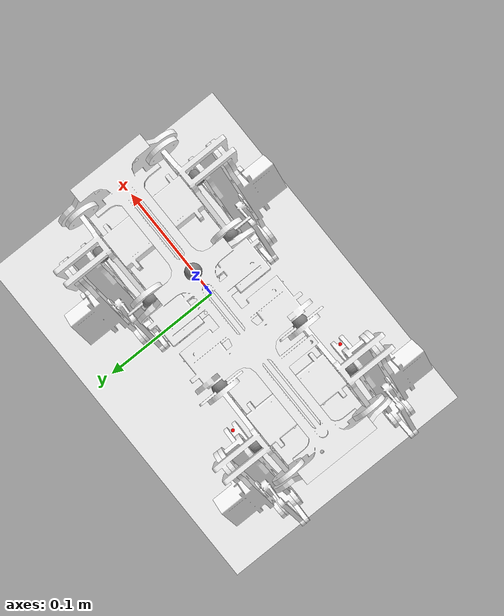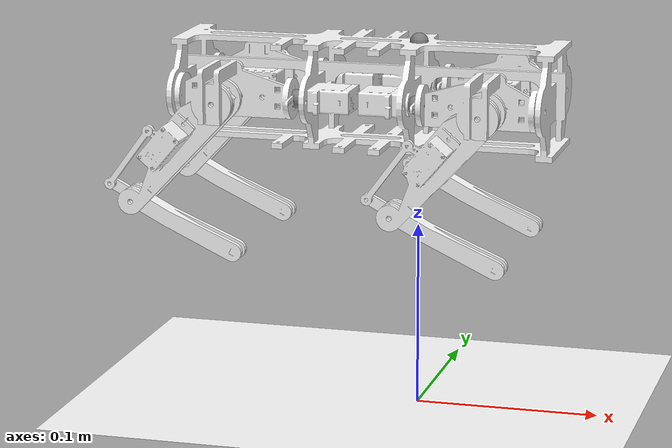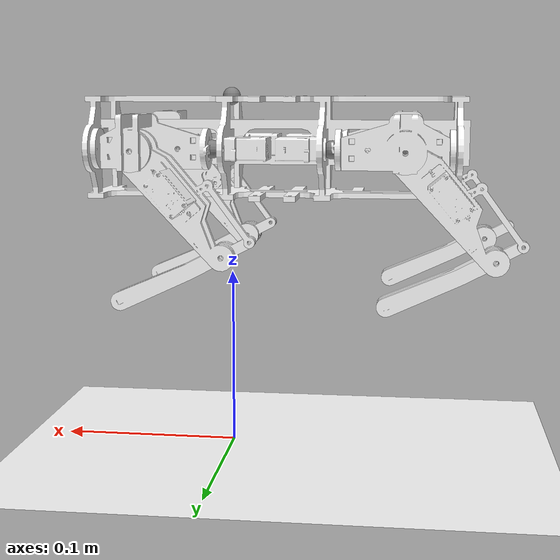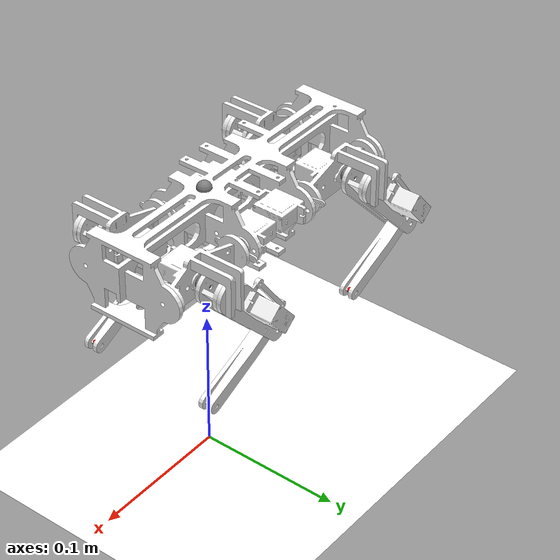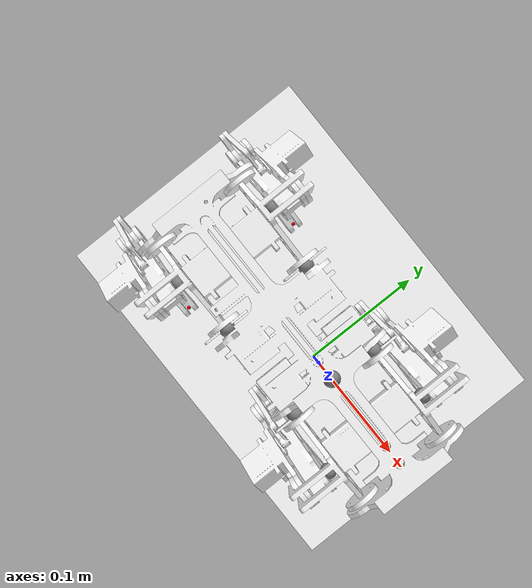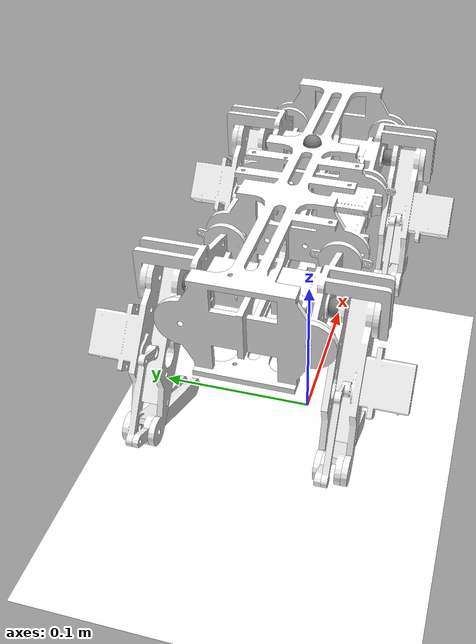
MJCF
<mujoco model="Quadruped">
  <compiler angle="radian" meshdir="./meshes/" autolimits="true"/>
  <option timestep="0.001" integrator="implicit" />

  <asset>
    <texture name="grid" type="2d" builtin="checker" width="512" height="512" rgb1=".1 .2 .3" rgb2=".2 .3 .4"/>
    <material name="grid" texture="grid" texrepeat="1 1" texuniform="true" reflectance=".1"/>

    <texture type="skybox" builtin="gradient" width="512" height="512" rgb1="0.3 0.5 0.7" rgb2="0 0 0"/>

    <mesh name="base_link" file="base_link.STL"/>
    <mesh name="Lf1_Link" file="Lf1_Link.STL"/>
    <mesh name="Lf2_Link" file="Lf2_Link.STL"/>
    <mesh name="Lf3_Link" file="Lf3_Link.STL"/>
    <mesh name="Rf1_Link" file="Rf1_Link.STL"/>
    <mesh name="Rf2_Link" file="Rf2_Link.STL"/>
    <mesh name="Rf3_Link" file="Rf3_Link.STL"/>
    <mesh name="Lb1_Link" file="Lb1_Link.STL"/>
    <mesh name="Lb2_Link" file="Lb2_Link.STL"/>
    <mesh name="Lb3_Link" file="Lb3_Link.STL"/>
    <mesh name="Rb1_Link" file="Rb1_Link.STL"/>
    <mesh name="Rb2_Link" file="Rb2_Link.STL"/>
    <mesh name="Rb3_Link" file="Rb3_Link.STL"/>
  </asset>

  <default>
    <default class = "Quadruped">
      <joint damping="0.01" armature="0.01" />
      <position kp="20" kv="0.5" />

        <default class = "left">
        <joint range = "-0.8 0.4" />
        <position ctrlrange="-0.8 0.4" />
        </default>

        <default class = "right">
        <joint range = "-0.4 0.8" />
        <position ctrlrange="-0.4 0.8" />
        </default>

        <default class="joint_l2">
          <joint range="-1.2 0"/>
          <position ctrlrange="-1.2 0"/>
          <default class="joint_l3">
            <joint range="-0.8 0.4"/>
            <position ctrlrange="-0.8 0.4"/>
          </default>
        </default>

    </default>
  </default>

  <worldbody>
    <light directional="true" diffuse=".8 .8 .8" pos="0 0 10" dir="0 0 -10"/>
    <geom name="floor" pos="0 0 0" euler="0 0 0" size="0 0 1" type="plane" material="grid" condim="3" conaffinity="1" contype="1" rgba="1 1 1 1"/>
    <body name = "base_link" pos = "0 0 0.2" childclass = "Quadruped">
      <geom type="mesh" rgba="1 1 1 1" mesh="base_link"/>
      <joint type="free"/>
      <site name="imu" pos="0 0 0"/>
      <body name="Lf1_Link" pos="0.00595 0.03 -0.028">
        <inertial pos="0.033547 -0.0066734 0.00069989" quat="0.416078 0.560186 0.419343 0.580709" mass="0.012373" diaginertia="1.01531e-06 9.16035e-07 4.2744e-07"/>
        <joint name="servo1" class = "left" axis="-1 0 0" />
        <geom type="mesh" rgba="1 1 1 1" mesh="Lf1_Link"/>
        <site name="Lf1_joint_site" pos="0 0 0"/>
        <body name="Lf2_Link" pos="0.0388 0.00585 0" quat="-0.396306 0 -0.918118 0">
          <inertial pos="0.0310193 0.0232306 -0.00116471" quat="0.519404 0.482767 0.482331 0.514308" mass="0.0130443" diaginertia="2.66601e-06 2.53189e-06 2.87379e-07"/>
          <joint name="servo2" class="joint_l2" axis="0 1 0" />
          <geom type="mesh" rgba="1 1 1 1" mesh="Lf2_Link"/>
          <site name="Lf2_joint_site" pos="0 0 0"/>
          <body name="Lf3_Link" pos="0.0728907 0.01265 0.00399401" quat="-0.605673 0 0.795714 0">
            <inertial pos="0.0274336 -0.00213708 0.00217692" quat="0.513179 0.486464 0.486464 0.513179" mass="0.00170995" diaginertia="8.32497e-07 8.22291e-07 1.3708e-08"/>
            <joint name="servo3" class="joint_l3" axis="0 -1 0" />
            <geom type="mesh" rgba="1 1 1 1" mesh="Lf3_Link"/>
            <site name="Lf3_foot" pos="0.061 -0.002 0.004" size="0.002" rgba="1 0 0 1"/>
          </body>
        </body>
      </body>

     <body name="Rf1_Link" pos="0.00595 -0.03 -0.028">
       <inertial pos="0.033547 0.00667341 0.000654999" quat="0.581273 0.419688 0.556407 0.419995" mass="0.0123731" diaginertia="1.0147e-06 9.16775e-07 4.27273e-07"/>
       <joint name="servo4" class = "right" axis="-1 0 0" />
       <geom type="mesh" rgba="1 1 1 1" mesh="Rf1_Link"/>
       <site name="Rf1_joint_site" pos="0 0 0"/>
       <body name="Rf2_Link" pos="0.0388 -0.00585 0" quat="0.396306 0 0.918118 0">
          <inertial pos="0.0310188 -0.0232306 -0.00115494" quat="0.514138 0.482502 0.482793 0.519388" mass="0.0130443" diaginertia="2.66601e-06 2.53186e-06 2.87405e-07"/>
          <joint name="servo5" class="joint_l2" axis="0 1 0" />
          <geom type="mesh" rgba="1 1 1 1" mesh="Rf2_Link"/>
          <site name="Rf2_joint_site" pos="0 0 0"/>
          <body name="Rf3_Link" pos="0.0728907 -0.01265 0.00399401" quat="0.605673 0 -0.795714 0">
            <inertial pos="0.0274336 0.00213708 0.00217692" quat="0.513179 0.486464 0.486464 0.513179" mass="0.00170995" diaginertia="8.32497e-07 8.22291e-07 1.3708e-08"/>
            <joint name="servo6" class="joint_l3" axis="0 -1 0" />
            <geom type="mesh" rgba="1 1 1 1" mesh="Rf3_Link"/>
            <site name="Rf3_foot" pos="0.061 0.002 0.004" size="0.002" rgba="1 0 0 1"/>
          </body>
       </body>
     </body>

     <body name="Lb1_Link" pos="-0.05895 0.03 -0.028">
       <inertial pos="-0.033547 -0.0066734 0.000655" quat="0.427347 0.57547 0.427997 0.55048" mass="0.012373" diaginertia="1.01365e-06 9.17801e-07 4.27274e-07"/>
       <joint name="servo7" class = "left" axis="1 0 0" />
       <geom type="mesh" rgba="1 1 1 1" mesh="Lb1_Link"/>
       <site name="Lb1_joint_site" pos="0 0 0"/>
       <body name="Lb2_Link" pos="-0.0388 0.00585 0" quat="0.396306 0 0.918118 0">
          <inertial pos="0.0310193 0.0232306 -0.00116471" quat="0.519404 0.482767 0.482331 0.514308" mass="0.0130443" diaginertia="2.66601e-06 2.53189e-06 2.87379e-07"/>
          <joint name="servo8" class="joint_l2" axis="0 1 0" />
          <geom type="mesh" rgba="1 1 1 1" mesh="Lb2_Link"/>
          <site name="Lb2_joint_site" pos="0 0 0"/>
          <body name="Lb3_Link" pos="0.0728907 0.01265 0.00399401" quat="0.605673 0 -0.795714 0">
            <inertial pos="0.0274336 -0.00213708 0.00217692" quat="0.513179 0.486464 0.486464 0.513179" mass="0.00170995" diaginertia="8.32497e-07 8.22291e-07 1.3708e-08"/>
            <joint name="servo9" class="joint_l3" axis="0 -1 0" />
            <geom type="mesh" rgba="1 1 1 1" mesh="Lb3_Link"/>
            <site name="Lb3_foot" pos="0.061 -0.002 0.004" size="0.002" rgba="1 0 0 1"/>
          </body>
       </body>
     </body>

     <body name="Rb1_Link" pos="-0.05895 -0.03 -0.028">
       <inertial pos="-0.033547 0.0066734 0.00069989" quat="0.560285 0.415942 0.580805 0.419211" mass="0.012373" diaginertia="1.01535e-06 9.16002e-07 4.2744e-07"/>
       <joint name="servo10" class = "right" axis="1 0 0" />
       <geom type="mesh" rgba="1 1 1 1" mesh="Rb1_Link"/>
       <site name="Rb1_joint_site" pos="0 0 0"/>
       <body name="Rb2_Link" pos="-0.0388 -0.00585 0" quat="0.396306 0 0.918118 0">
         <inertial pos="0.031019 -0.023231 -0.0011549" quat="0.514138 0.482502 0.482793 0.519389" mass="0.013044" diaginertia="2.66597e-06 2.53184e-06 2.874e-07"/>
         <joint name="servo11" class="joint_l2" axis="0 1 0" />
         <geom type="mesh" rgba="1 1 1 1" mesh="Rb2_Link"/>
         <site name="Rb2_joint_site" pos="0 0 0"/>
         <body name="Rb3_Link" pos="0.0728907 -0.01265 0.00399401" quat="-0.605673 0 0.795714 0">
           <inertial pos="0.027434 0.0021371 0.0021769" quat="0.51318 0.486464 0.486464 0.51318" mass="0.0017099" diaginertia="8.325e-07 8.22287e-07 1.37082e-08"/>
           <joint name="servo12" class="joint_l3" axis="0 -1 0" />
           <geom type="mesh" rgba="1 1 1 1" mesh="Rb3_Link"/>
           <site name="Rb3_foot" pos="0.061 0.002 0.004" size="0.002" rgba="1 0 0 1"/>
         </body>
       </body>
     </body>
    </body>
  </worldbody>

  <actuator>
    <position class = "left" name="lf1" joint="servo1"/>
    <position class="joint_l2" name="lf2" joint="servo2"/>
    <position class="joint_l3" name="lf3" joint="servo3"/>
    <position class = "right" name="rf1" joint="servo4"/>
    <position class="joint_l2" name="rf2" joint="servo5"/>
    <position class="joint_l3" name="rf3" joint="servo6"/>
    <position class = "left" name="lb1" joint="servo7"/>
    <position class="joint_l2" name="lb2" joint="servo8"/>
    <position class="joint_l3" name="lb3" joint="servo9"/>
    <position class = "right" name="rb1" joint="servo10"/>
    <position class="joint_l2" name="rb2" joint="servo11"/>
    <position class="joint_l3" name="rb3" joint="servo12"/>
  </actuator>

  <sensor>
    <framequat name="Body_Quat" objtype="site" objname="imu"/>
    <gyro name="Body_Gyro" site="imu"/>
    <accelerometer name="Body_Acc" site="imu"/>

    <jointpos name="Lf1" joint="servo1"/>
    <jointpos name="Lf2" joint="servo2"/>
    <jointpos name="Lf3" joint="servo3"/>
    <jointpos name="Rf1" joint="servo4"/>
    <jointpos name="Rf2" joint="servo5"/>
    <jointpos name="Rf3" joint="servo6"/>
    <jointpos name="Lb1" joint="servo7"/>
    <jointpos name="Lb2" joint="servo8"/>
    <jointpos name="Lb3" joint="servo9"/>
    <jointpos name="Rb1" joint="servo10"/>
    <jointpos name="Rb2" joint="servo11"/>
    <jointpos name="Rb3" joint="servo12"/>
  </sensor>
</mujoco>
